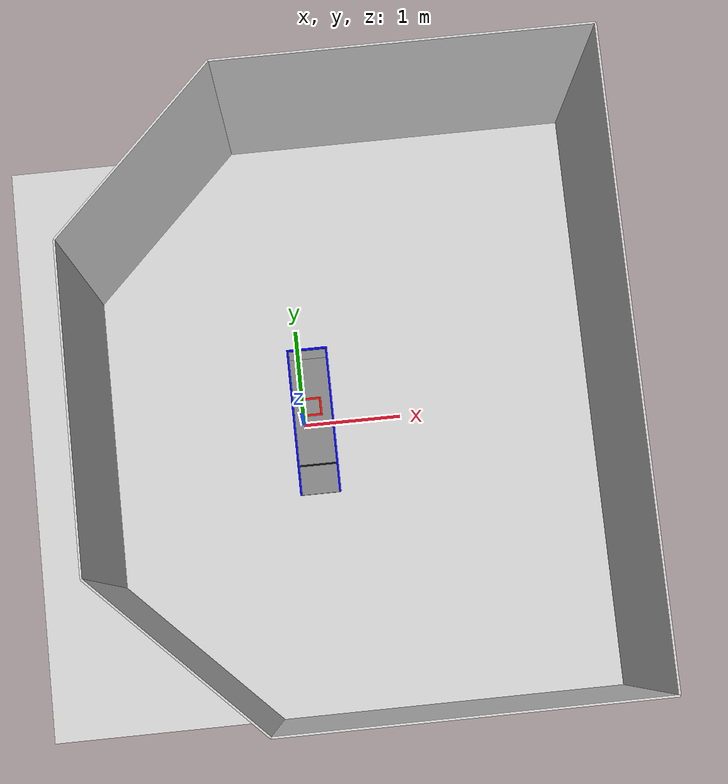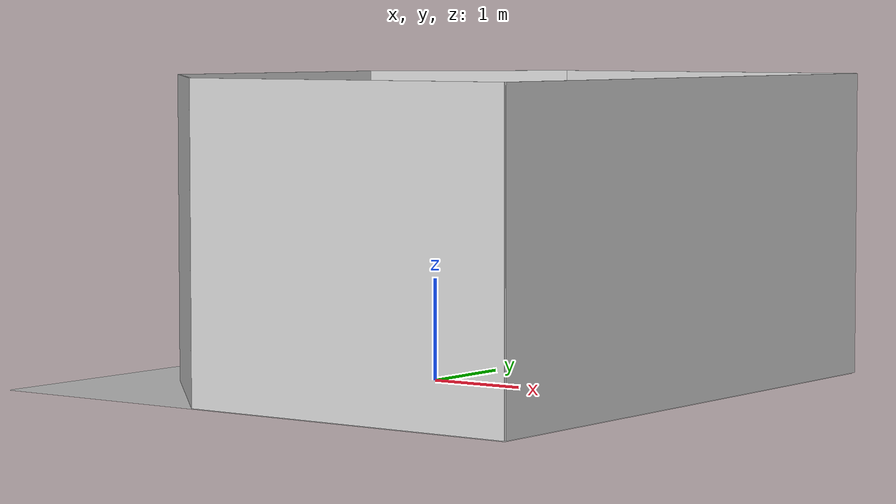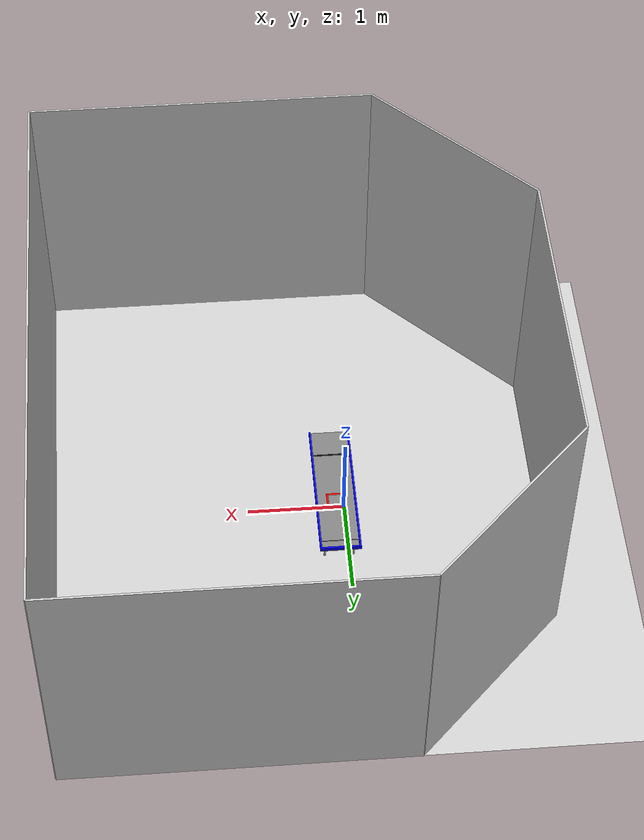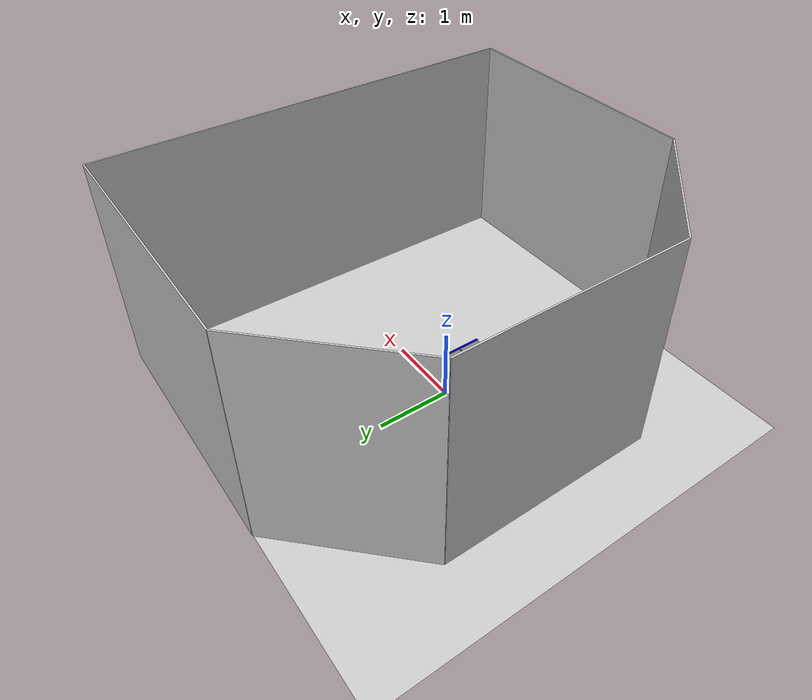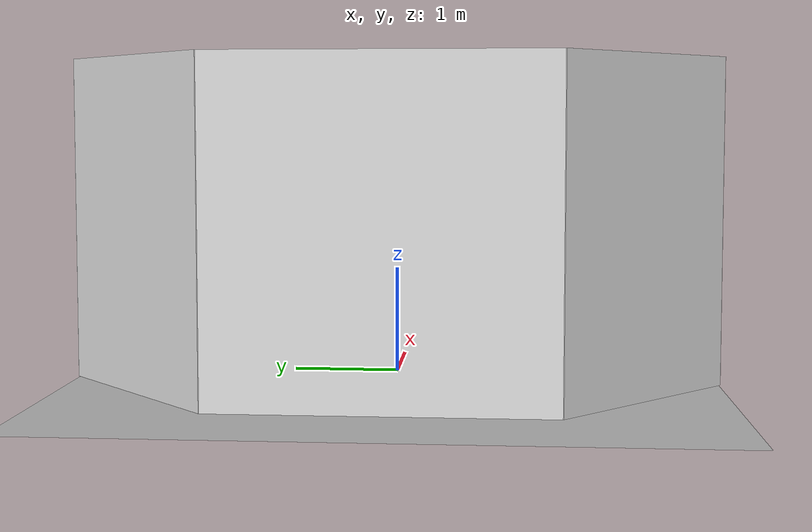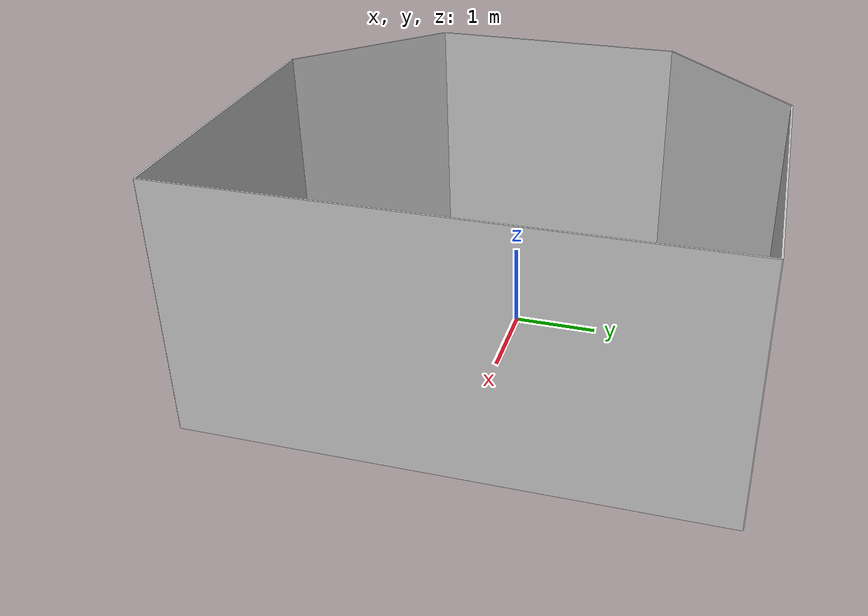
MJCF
<mujoco model="table_lines">
    <asset>
        <texture builtin="gradient" height="256" rgb1=".9 .9 1." rgb2=".2 .3 .4" type="skybox"
            width="256" />
        <texture file="../textures/light-gray-floor-tile.png" type="2d" name="texplane" />
        <material name="floorplane" reflectance="0.01" shininess="0.0" specular="0.0"
            texrepeat="2 2"
            texture="texplane" texuniform="true" />
        <!-- steel legs -->
        <texture file="../textures/steel-brushed.png" type="cube" name="tex-steel-brushed" />
        <material name="table_legs_metal" reflectance="0.8" shininess="0.8" texrepeat="1 1"
            texture="tex-steel-brushed" />
        <!-- plaster walls -->
        <texture file="../textures/light-gray-plaster.png" type="2d" name="tex-light-gray-plaster" />
        <material name="walls_mat" reflectance="0.0" shininess="0.1" specular="0.1" texrepeat="3 3"
            texture="tex-light-gray-plaster" texuniform="true" />
        <!-- bins -->
        <texture file="../textures/light-wood.png" type="2d" name="tex-light-wood" />
        <texture file="../textures/dark-wood.png" type="2d" name="tex-dark-wood" />
        <material name="light-wood" reflectance="0" texrepeat="15 15" texture="tex-light-wood"
            texuniform="true" />
        <material name="dark-wood" reflectance="0" texrepeat="5 5" texture="tex-dark-wood"
            texuniform="true" />
    </asset>
    <worldbody>
        <geom condim="3" group="1" material="floorplane" name="floor" pos="0 0 0" size="3 3 .125"
            type="plane" />
        <!-- Walls (visual only) -->
        <geom pos="-1.25 2.25 1.5" quat="0.6532815 0.6532815 0.2705981 0.2705981"
            size="1.06 1.5 0.01"
            type="box" conaffinity="0" contype="0" group="1" name="wall_leftcorner_visual"
            material="walls_mat" />
        <geom pos="-1.25 -2.25 1.5" quat="0.6532815 0.6532815 -0.2705981 -0.2705981"
            size="1.06 1.5 0.01" type="box" conaffinity="0" contype="0" group="1"
            name="wall_rightcorner_visual" material="walls_mat" />
        <geom pos="1.25 3 1.5" quat="0.7071 0.7071 0 0" size="1.75 1.5 0.01" type="box"
            conaffinity="0"
            contype="0" group="1" name="wall_left_visual" material="walls_mat" />
        <geom pos="1.25 -3 1.5" quat="0.7071 -0.7071 0 0" size="1.75 1.5 0.01" type="box"
            conaffinity="0" contype="0" group="1" name="wall_right_visual" material="walls_mat" />
        <geom pos="-2 0 1.5" quat="0.5 0.5 0.5 0.5" size="1.5 1.5 0.01" type="box" conaffinity="0"
            contype="0" group="1" name="wall_rear_visual" material="walls_mat" />
        <geom pos="3 0 1.5" quat="0.5 0.5 -0.5 -0.5" size="3 1.5 0.01" type="box" conaffinity="0"
            contype="0" group="1" name="wall_front_visual" material="walls_mat" />
        <!-- bins -->
        <body name="table" pos="0.1 0.0 0.3">
            <!-- Friction: as low as possible -->
            <geom pos="0 -0.05 0" size="0.2 0.70 0.02" type="box" group="0"
                friction="0.000001 0.000001 0.000001" />
            <geom pos="0 -0.05 0" material="light-wood" size="0.2 0.70 0.02" type="box"
                conaffinity="0" contype="0" group="1" />
            <!-- Create a slot at the end of the table to prevent the cube from bouncing back -->
            <geom pos="0 0.70 -0.005" size="0.2 0.05 0.015" type="box" group="0"
                friction="0.000001 0.000001 0.000001" />
            <geom pos="0 0.70 -0.005" material="light-wood" size="0.2 0.05 0.015" type="box"
                conaffinity="0" contype="0" group="1" />
            <geom pos="0 0.75 0.02" size="0.21 0.01 0.02" type="box" group="0"
                friction="1 0.005 0.0001"
                rgba="0 0 1 1" />
            <geom pos="0 0.75 0.02" size="0.21 0.01 0.02" type="box" conaffinity="0" contype="0"
                group="1"
                material="light-wood" />
            <geom pos="0.2 0 0.02" size="0.01 0.75 0.02" type="box" group="0"
                friction="1 0.005 0.0001"
                rgba="0 0 1 1" />
            <geom pos="0.2 0 0.02" size="0.01 0.75 0.02" type="box" conaffinity="0" contype="0"
                group="1"
                material="light-wood" />
            <geom pos="-0.2 0 0.02" size="0.01 0.75 0.02" type="box" group="0"
                friction="1 0.005 0.0001"
                rgba="0 0 1 1" />
            <geom pos="-0.2 0 0.02" size="0.01 0.75 0.02" type="box" conaffinity="0" contype="0"
                group="1"
                material="light-wood" />
            <!-- Legs (visual only) -->
            <geom pos="0.15 0.6 -0.15" size="0.01 0.15" type="cylinder" conaffinity="0" contype="0"
                group="1" name="bin1_leg1_visual" material="table_legs_metal" />
            <geom pos="-0.15 0.6 -0.15" size="0.01 0.15" type="cylinder" conaffinity="0" contype="0"
                group="1" name="bin1_leg2_visual" material="table_legs_metal" />
            <geom pos="-0.15 -0.6 -0.15" size="0.01 0.15" type="cylinder" conaffinity="0"
                contype="0" group="1" name="bin1_leg3_visual" material="table_legs_metal" />
            <geom pos="0.15 -0.6 -0.15" size="0.01 0.15" type="cylinder" conaffinity="0" contype="0"
                group="1" name="bin1_leg4_visual" material="table_legs_metal" />

            <!-- Lines (visual only) -->
            <geom name="middle_line" pos="0 -0.45 0.02" size="0.2 0.01 0.0001" type="box" group="1"
                contype="0" conaffinity="0" rgba="0 0 0 1" />
            <!-- 2D Box: relative_center: (0, 0.3), absolute_center: (0.1, 0.3, 0.3),
            size: (0.1, 0.1), width: (0.01, 0.01)-->

            <!-- 2D Box: relative_center: (0, 0.3), absolute_center: (0.1, 0.3, 0.3),
            size: (0.1, 0.1), width: (0.01, 0.01)-->
            <geom name="box_line_0" pos="0 0.235 0.02" size="0.095 0.01 0.0001" type="box" group="1"
                contype="0" conaffinity="0" rgba="1 0 0 1" />
            <geom name="box_line_1" pos="0 0.065 0.02" size="0.095 0.01 0.0001" type="box" group="1"
                contype="0" conaffinity="0" rgba="1 0 0 1" />
            <geom name="box_line_2" pos="0.085 0.15 0.02" size="0.01 0.095 0.0001" type="box"
                group="1" contype="0" conaffinity="0" rgba="1 0 0 1" />
            <geom name="box_line_3" pos="-0.085 0.15 0.02" size="0.01 0.095 0.0001" type="box"
                group="1" contype="0" conaffinity="0" rgba="1 0 0 1" />

        </body>

        <!-- Uniform lighting from multiple directions -->
        <light diffuse="1.0 1.0 1.0" pos="0 0 3" castshadow="false" />
        <light diffuse="1.0 1.0 1.0" pos="3 0 3" castshadow="false" />
        <light diffuse="1.0 1.0 1.0" pos="-3 0 3" castshadow="false" />
        <light diffuse="1.0 1.0 1.0" pos="0 3 3" castshadow="false" />
        <light diffuse="1.0 1.0 1.0" pos="0 -3 3" castshadow="false" />
        <!-- front view -->
        <camera mode="fixed" name="frontview" pos="1.6 0 1.45" quat="0.56 0.43 0.43 0.56" />
        <!-- bird view -->
        <camera mode="fixed" name="birdview" pos="0.2 0 1.5" quat="0.7071 0 0 0.7071" />
        <camera mode="fixed" name="third_person_camera" pos="0.089 -0.826 1.875"
            xyaxes="1.000 -0.000 -0.000 0.000 0.911 0.413" />

        <camera mode="fixed" name="zoom_in_camera" pos="0.1 0.15 0.6" xyaxes="1.000 0.001 0.000 -0.001 1.000 0.020"/>

        <!-- agent view -->
        <camera mode="fixed" name="visualization_camera" pos="1.2 -0.35 1.502" xyaxes="-0.000 1.000 0.000 -0.769 -0.000 0.639"/>

    </worldbody>
</mujoco>
